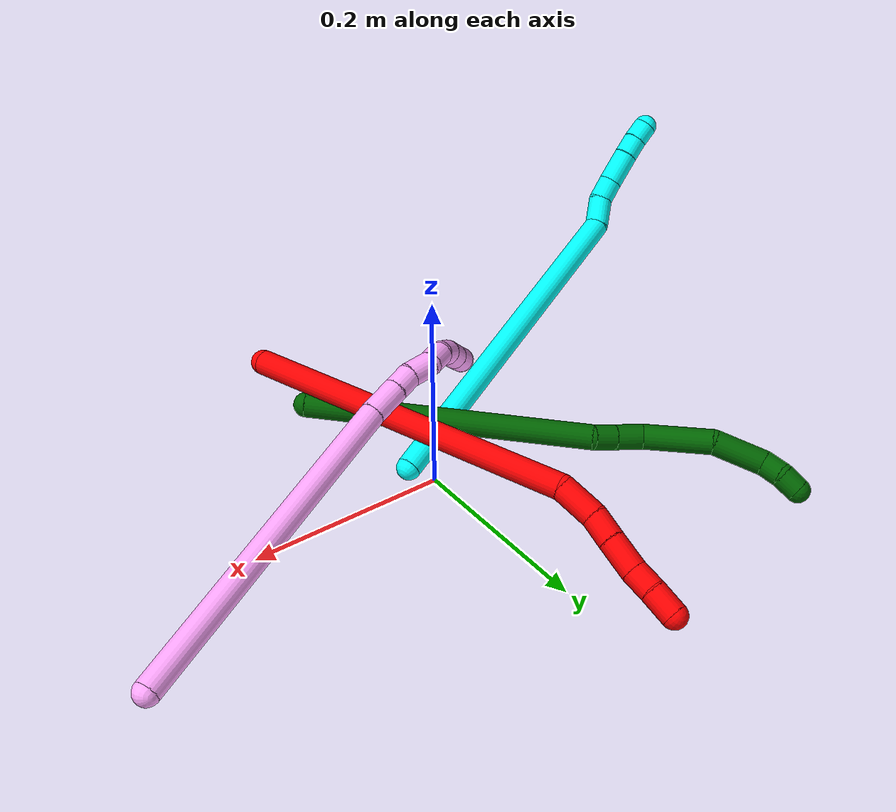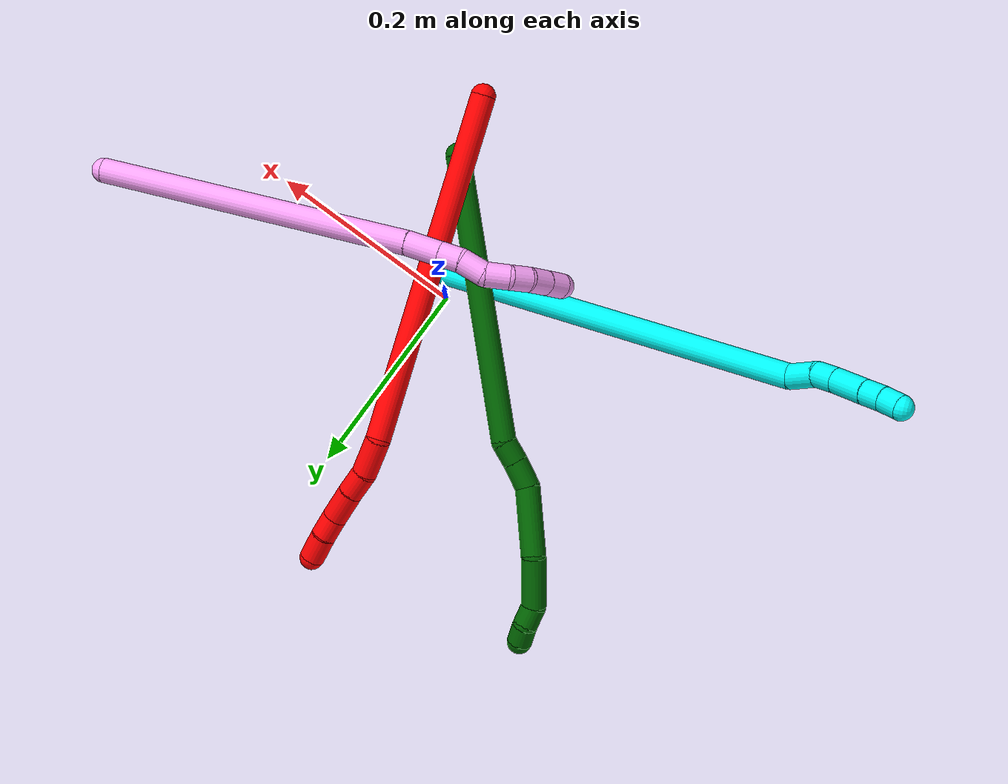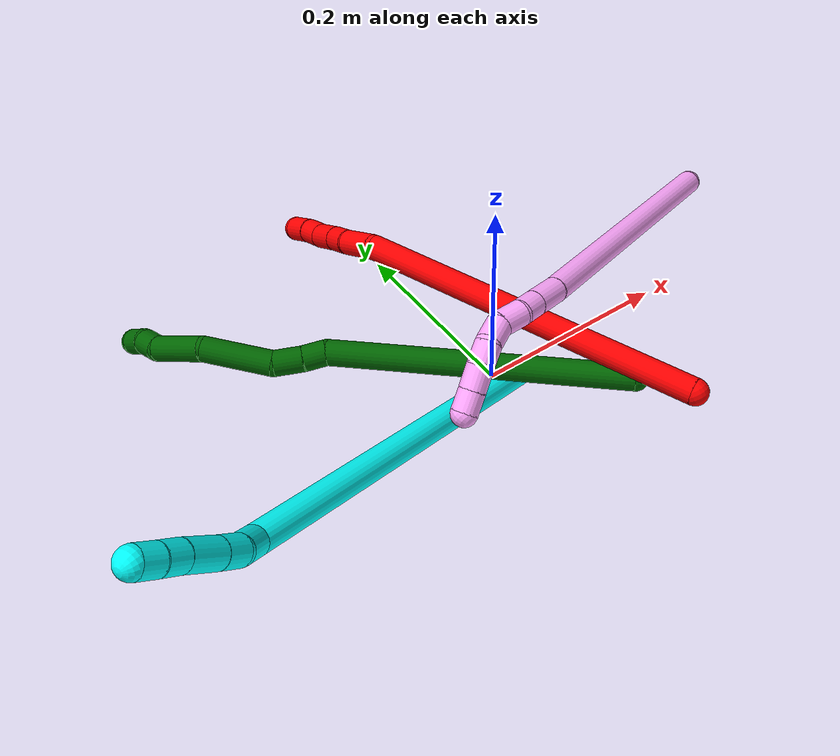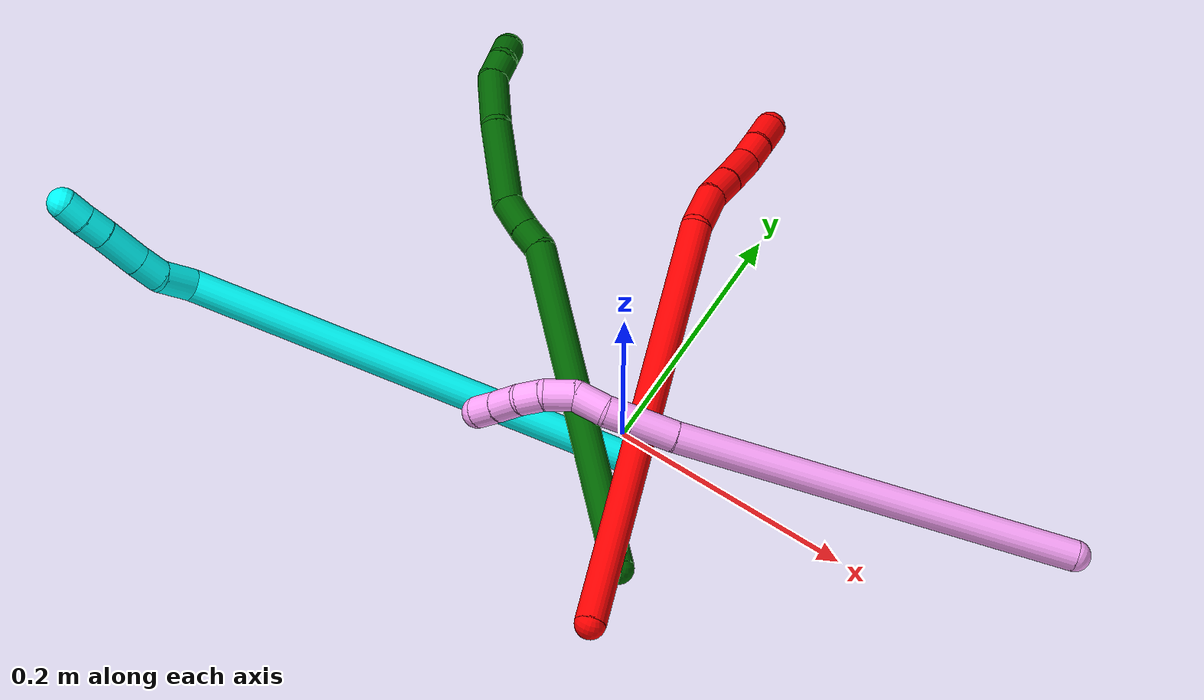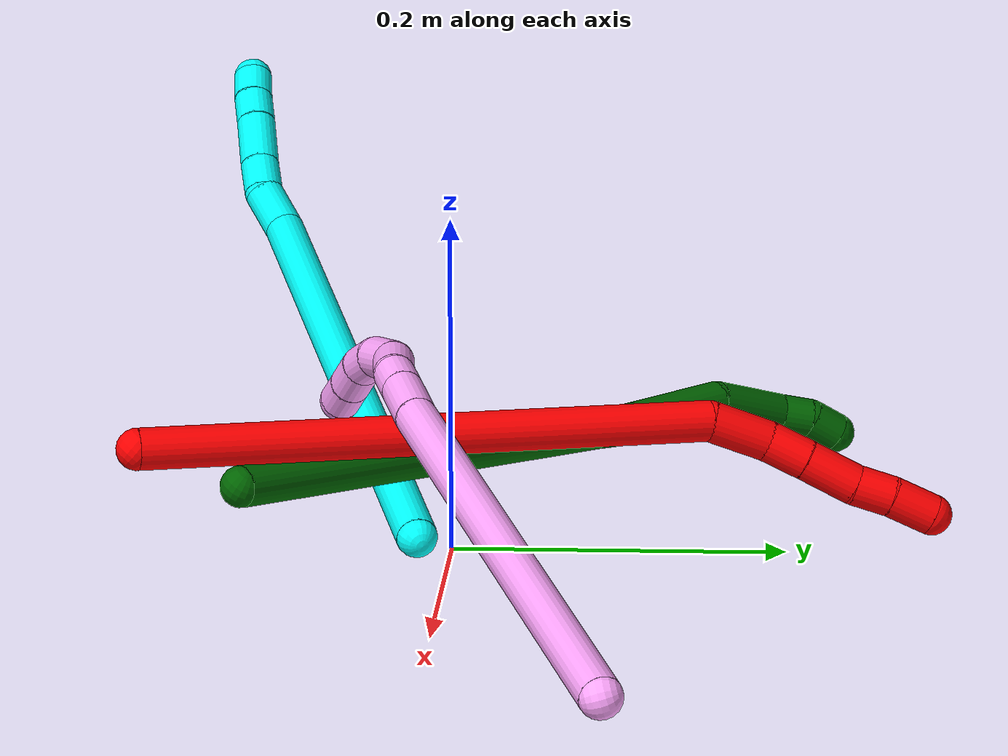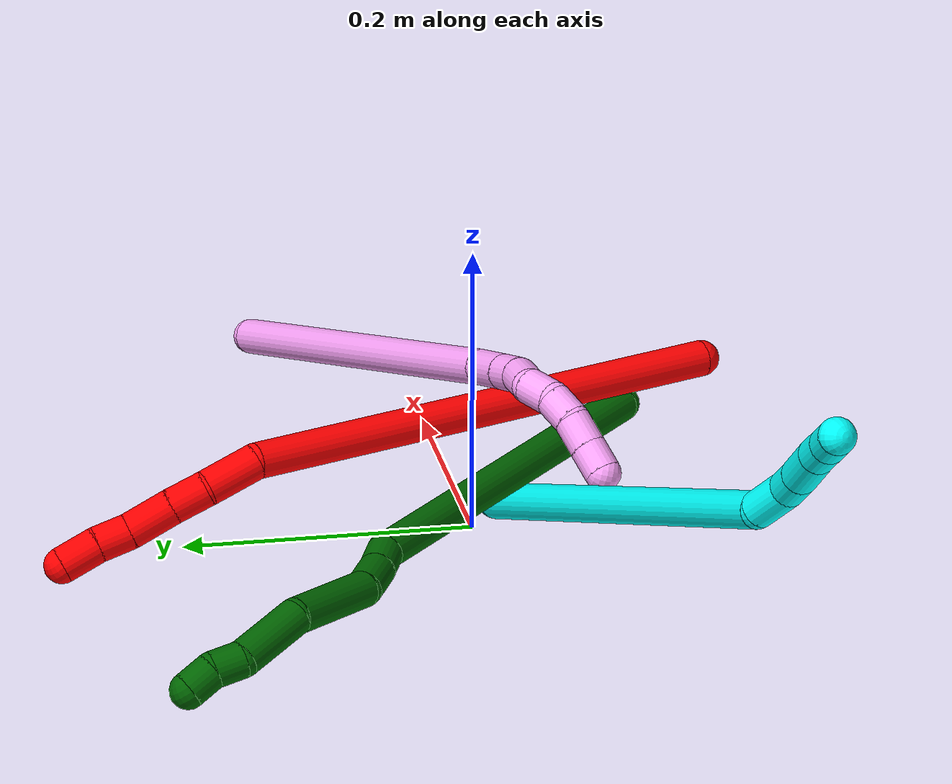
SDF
<sdf version="1.7">
 <world name="default">
  <model name="2">
   <static>0</static>
   <link name="2">
    <collision name="collision-cylinder-e_1_1_4">
     <pose>-0.042637 0.131078 0.108665 -0.878614 -0.245373 0.115762</pose>
     <geometry><cylinder><radius>0.0125</radius><length>0.351042</length></cylinder></geometry>
     <surface>
      <friction><ode><mu>1.16</mu><mu2>1.16</mu2><slip1>0</slip1><slip2>0</slip2></ode></friction>
      <contact><ode><kp>1e+06</kp><kd>1</kd><max_vel>0</max_vel><min_depth>0.001</min_depth></ode></contact>
     </surface>
    </collision>
    <visual name="visual-cylinder-e_1_1_4">
     <pose>-0.042637 0.131078 0.108665 -0.878614 -0.245373 0.115762</pose>
     <geometry><cylinder><radius>0.0125</radius><length>0.351042</length></cylinder></geometry>
     <material><ambient>1 0 0 1</ambient></material>
    </visual>
    <collision name="collision-cylinder-e_2_4_5">
     <pose>-0.087917 0.280091 0.223551 -1.23693 -0.138312 0.0985</pose>
     <geometry><cylinder><radius>0.0125</radius><length>0.038331</length></cylinder></geometry>
     <surface>
      <friction><ode><mu>1.16</mu><mu2>1.16</mu2><slip1>0</slip1><slip2>0</slip2></ode></friction>
      <contact><ode><kp>1e+06</kp><kd>1</kd><max_vel>0</max_vel><min_depth>0.001</min_depth></ode></contact>
     </surface>
    </collision>
    <visual name="visual-cylinder-e_2_4_5">
     <pose>-0.087917 0.280091 0.223551 -1.23693 -0.138312 0.0985</pose>
     <geometry><cylinder><radius>0.0125</radius><length>0.038331</length></cylinder></geometry>
     <material><ambient>1 0 0 1</ambient></material>
    </visual>
    <collision name="collision-cylinder-e_3_5_6">
     <pose>-0.089574 0.310755 0.232986 -1.32349 0.07487 -0.058327</pose>
     <geometry><cylinder><radius>0.0125</radius><length>0.026332</length></cylinder></geometry>
     <surface>
      <friction><ode><mu>1.16</mu><mu2>1.16</mu2><slip1>0</slip1><slip2>0</slip2></ode></friction>
      <contact><ode><kp>1e+06</kp><kd>1</kd><max_vel>0</max_vel><min_depth>0.001</min_depth></ode></contact>
     </surface>
    </collision>
    <visual name="visual-cylinder-e_3_5_6">
     <pose>-0.089574 0.310755 0.232986 -1.32349 0.07487 -0.058327</pose>
     <geometry><cylinder><radius>0.0125</radius><length>0.026332</length></cylinder></geometry>
     <material><ambient>1 0 0 1</ambient></material>
    </visual>
    <collision name="collision-cylinder-e_4_6_7">
     <pose>-0.08808 0.339709 0.239796 -1.35269 0.030663 -0.024612</pose>
     <geometry><cylinder><radius>0.0125</radius><length>0.033252</length></cylinder></geometry>
     <surface>
      <friction><ode><mu>1.16</mu><mu2>1.16</mu2><slip1>0</slip1><slip2>0</slip2></ode></friction>
      <contact><ode><kp>1e+06</kp><kd>1</kd><max_vel>0</max_vel><min_depth>0.001</min_depth></ode></contact>
     </surface>
    </collision>
    <visual name="visual-cylinder-e_4_6_7">
     <pose>-0.08808 0.339709 0.239796 -1.35269 0.030663 -0.024612</pose>
     <geometry><cylinder><radius>0.0125</radius><length>0.033252</length></cylinder></geometry>
     <material><ambient>1 0 0 1</ambient></material>
    </visual>
    <collision name="collision-cylinder-e_5_7_8">
     <pose>-0.087529 0.366818 0.247785 -1.18715 0.003515 -0.002372</pose>
     <geometry><cylinder><radius>0.0125</radius><length>0.023475</length></cylinder></geometry>
     <surface>
      <friction><ode><mu>1.16</mu><mu2>1.16</mu2><slip1>0</slip1><slip2>0</slip2></ode></friction>
      <contact><ode><kp>1e+06</kp><kd>1</kd><max_vel>0</max_vel><min_depth>0.001</min_depth></ode></contact>
     </surface>
    </collision>
    <visual name="visual-cylinder-e_5_7_8">
     <pose>-0.087529 0.366818 0.247785 -1.18715 0.003515 -0.002372</pose>
     <geometry><cylinder><radius>0.0125</radius><length>0.023475</length></cylinder></geometry>
     <material><ambient>1 0 0 1</ambient></material>
    </visual>
    <collision name="collision-cylinder-e_6_8_2">
     <pose>-0.088092 0.391014 0.255703 -1.31193 -0.043882 0.033776</pose>
     <geometry><cylinder><radius>0.0125</radius><length>0.027568</length></cylinder></geometry>
     <surface>
      <friction><ode><mu>1.16</mu><mu2>1.16</mu2><slip1>0</slip1><slip2>0</slip2></ode></friction>
      <contact><ode><kp>1e+06</kp><kd>1</kd><max_vel>0</max_vel><min_depth>0.001</min_depth></ode></contact>
     </surface>
    </collision>
    <visual name="visual-cylinder-e_6_8_2">
     <pose>-0.088092 0.391014 0.255703 -1.31193 -0.043882 0.033776</pose>
     <geometry><cylinder><radius>0.0125</radius><length>0.027568</length></cylinder></geometry>
     <material><ambient>1 0 0 1</ambient></material>
    </visual>
    <collision name="collision-sphere-2">
     <pose>-0.088697 0.404326 0.259228 0 -0 0</pose>
     <geometry><sphere><radius>0.0125</radius></sphere></geometry>
     <surface>
      <friction><ode><mu>1.16</mu><mu2>1.16</mu2><slip1>0</slip1><slip2>0</slip2></ode></friction>
      <contact><ode><kp>1e+06</kp><kd>1</kd><max_vel>0</max_vel><min_depth>0.001</min_depth></ode></contact>
     </surface>
    </collision>
    <visual name="visual-sphere-2">
     <pose>-0.088697 0.404326 0.259228 0 -0 0</pose>
     <geometry><sphere><radius>0.0125</radius></sphere></geometry>
     <material><ambient>1 0 0 1</ambient></material>
    </visual>
    <collision name="collision-sphere-4">
     <pose>-0.085275 0.262157 0.217331 0 -0 0</pose>
     <geometry><sphere><radius>0.0125</radius></sphere></geometry>
     <surface>
      <friction><ode><mu>1.16</mu><mu2>1.16</mu2><slip1>0</slip1><slip2>0</slip2></ode></friction>
      <contact><ode><kp>1e+06</kp><kd>1</kd><max_vel>0</max_vel><min_depth>0.001</min_depth></ode></contact>
     </surface>
    </collision>
    <visual name="visual-sphere-4">
     <pose>-0.085275 0.262157 0.217331 0 -0 0</pose>
     <geometry><sphere><radius>0.0125</radius></sphere></geometry>
     <material><ambient>1 0 0 1</ambient></material>
    </visual>
    <collision name="collision-sphere-1">
     <geometry><sphere><radius>0.0125</radius></sphere></geometry>
     <surface>
      <friction><ode><mu>1.16</mu><mu2>1.16</mu2><slip1>0</slip1><slip2>0</slip2></ode></friction>
      <contact><ode><kp>1e+06</kp><kd>1</kd><max_vel>0</max_vel><min_depth>0.001</min_depth></ode></contact>
     </surface>
    </collision>
    <visual name="visual-sphere-1">
     <geometry><sphere><radius>0.0125</radius></sphere></geometry>
     <material><ambient>1 0 0 1</ambient></material>
    </visual>
    <collision name="collision-sphere-8">
     <pose>-0.087488 0.377702 0.252178 0 -0 0</pose>
     <geometry><sphere><radius>0.0125</radius></sphere></geometry>
     <surface>
      <friction><ode><mu>1.16</mu><mu2>1.16</mu2><slip1>0</slip1><slip2>0</slip2></ode></friction>
      <contact><ode><kp>1e+06</kp><kd>1</kd><max_vel>0</max_vel><min_depth>0.001</min_depth></ode></contact>
     </surface>
    </collision>
    <visual name="visual-sphere-8">
     <pose>-0.087488 0.377702 0.252178 0 -0 0</pose>
     <geometry><sphere><radius>0.0125</radius></sphere></geometry>
     <material><ambient>1 0 0 1</ambient></material>
    </visual>
    <collision name="collision-sphere-5">
     <pose>-0.090559 0.298026 0.229772 0 -0 0</pose>
     <geometry><sphere><radius>0.0125</radius></sphere></geometry>
     <surface>
      <friction><ode><mu>1.16</mu><mu2>1.16</mu2><slip1>0</slip1><slip2>0</slip2></ode></friction>
      <contact><ode><kp>1e+06</kp><kd>1</kd><max_vel>0</max_vel><min_depth>0.001</min_depth></ode></contact>
     </surface>
    </collision>
    <visual name="visual-sphere-5">
     <pose>-0.090559 0.298026 0.229772 0 -0 0</pose>
     <geometry><sphere><radius>0.0125</radius></sphere></geometry>
     <material><ambient>1 0 0 1</ambient></material>
    </visual>
    <collision name="collision-sphere-6">
     <pose>-0.08859 0.323485 0.2362 0 -0 0</pose>
     <geometry><sphere><radius>0.0125</radius></sphere></geometry>
     <surface>
      <friction><ode><mu>1.16</mu><mu2>1.16</mu2><slip1>0</slip1><slip2>0</slip2></ode></friction>
      <contact><ode><kp>1e+06</kp><kd>1</kd><max_vel>0</max_vel><min_depth>0.001</min_depth></ode></contact>
     </surface>
    </collision>
    <visual name="visual-sphere-6">
     <pose>-0.08859 0.323485 0.2362 0 -0 0</pose>
     <geometry><sphere><radius>0.0125</radius></sphere></geometry>
     <material><ambient>1 0 0 1</ambient></material>
    </visual>
    <collision name="collision-sphere-7">
     <pose>-0.08757 0.355934 0.243392 0 -0 0</pose>
     <geometry><sphere><radius>0.0125</radius></sphere></geometry>
     <surface>
      <friction><ode><mu>1.16</mu><mu2>1.16</mu2><slip1>0</slip1><slip2>0</slip2></ode></friction>
      <contact><ode><kp>1e+06</kp><kd>1</kd><max_vel>0</max_vel><min_depth>0.001</min_depth></ode></contact>
     </surface>
    </collision>
    <visual name="visual-sphere-7">
     <pose>-0.08757 0.355934 0.243392 0 -0 0</pose>
     <geometry><sphere><radius>0.0125</radius></sphere></geometry>
     <material><ambient>1 0 0 1</ambient></material>
    </visual>
    <inertial>
     <pose>-0.056216 0.191239 0.147379 0 -0 0</pose>
     <mass>0.5</mass>
     <inertia>
      <ixx>0.003904</ixx>
      <ixy>0</ixy>
      <ixz>0</ixz>
      <iyy>0.002815</iyy>
      <iyz>0</iyz>
      <izz>-0.00182</izz>
     </inertia>
    </inertial>
   </link>
   <pose>0.085203 -0.177345 0.079597 -0.705389 -0.025949 0.093864</pose>
  </model>
  <model name="3">
   <static>0</static>
   <link name="3">
    <collision name="collision-cylinder-e_1_1_4">
     <pose>-0.013847 -0.007737 0.183865 0.042053 -0.075104 -0.00158</pose>
     <geometry><cylinder><radius>0.0125</radius><length>0.369095</length></cylinder></geometry>
     <surface>
      <friction><ode><mu>1.16</mu><mu2>1.16</mu2><slip1>0</slip1><slip2>0</slip2></ode></friction>
      <contact><ode><kp>1e+06</kp><kd>1</kd><max_vel>0</max_vel><min_depth>0.001</min_depth></ode></contact>
     </surface>
    </collision>
    <visual name="visual-cylinder-e_1_1_4">
     <pose>-0.013847 -0.007737 0.183865 0.042053 -0.075104 -0.00158</pose>
     <geometry><cylinder><radius>0.0125</radius><length>0.369095</length></cylinder></geometry>
     <material><ambient>0.003922 1 0.996078 1</ambient></material>
    </visual>
    <collision name="collision-cylinder-e_2_4_5">
     <pose>-0.03306 -0.009807 0.381199 -0.39818 -0.351883 0.071708</pose>
     <geometry><cylinder><radius>0.0125</radius><length>0.031133</length></cylinder></geometry>
     <surface>
      <friction><ode><mu>1.16</mu><mu2>1.16</mu2><slip1>0</slip1><slip2>0</slip2></ode></friction>
      <contact><ode><kp>1e+06</kp><kd>1</kd><max_vel>0</max_vel><min_depth>0.001</min_depth></ode></contact>
     </surface>
    </collision>
    <visual name="visual-cylinder-e_2_4_5">
     <pose>-0.03306 -0.009807 0.381199 -0.39818 -0.351883 0.071708</pose>
     <geometry><cylinder><radius>0.0125</radius><length>0.031133</length></cylinder></geometry>
     <material><ambient>0.003922 1 0.996078 1</ambient></material>
    </visual>
    <collision name="collision-cylinder-e_3_5_6">
     <pose>-0.043669 -0.003716 0.405083 -0.040859 -0.466083 0.009699</pose>
     <geometry><cylinder><radius>0.0125</radius><length>0.023337</length></cylinder></geometry>
     <surface>
      <friction><ode><mu>1.16</mu><mu2>1.16</mu2><slip1>0</slip1><slip2>0</slip2></ode></friction>
      <contact><ode><kp>1e+06</kp><kd>1</kd><max_vel>0</max_vel><min_depth>0.001</min_depth></ode></contact>
     </surface>
    </collision>
    <visual name="visual-cylinder-e_3_5_6">
     <pose>-0.043669 -0.003716 0.405083 -0.040859 -0.466083 0.009699</pose>
     <geometry><cylinder><radius>0.0125</radius><length>0.023337</length></cylinder></geometry>
     <material><ambient>0.003922 1 0.996078 1</ambient></material>
    </visual>
    <collision name="collision-cylinder-e_4_6_7">
     <pose>-0.057276 -0.003283 0.431039 -0.000457 -0.493732 0.000115</pose>
     <geometry><cylinder><radius>0.0125</radius><length>0.035296</length></cylinder></geometry>
     <surface>
      <friction><ode><mu>1.16</mu><mu2>1.16</mu2><slip1>0</slip1><slip2>0</slip2></ode></friction>
      <contact><ode><kp>1e+06</kp><kd>1</kd><max_vel>0</max_vel><min_depth>0.001</min_depth></ode></contact>
     </surface>
    </collision>
    <visual name="visual-cylinder-e_4_6_7">
     <pose>-0.057276 -0.003283 0.431039 -0.000457 -0.493732 0.000115</pose>
     <geometry><cylinder><radius>0.0125</radius><length>0.035296</length></cylinder></geometry>
     <material><ambient>0.003922 1 0.996078 1</ambient></material>
    </visual>
    <collision name="collision-cylinder-e_5_7_8">
     <pose>-0.070094 -0.003364 0.456113 0.009232 -0.437097 -0.00205</pose>
     <geometry><cylinder><radius>0.0125</radius><length>0.021045</length></cylinder></geometry>
     <surface>
      <friction><ode><mu>1.16</mu><mu2>1.16</mu2><slip1>0</slip1><slip2>0</slip2></ode></friction>
      <contact><ode><kp>1e+06</kp><kd>1</kd><max_vel>0</max_vel><min_depth>0.001</min_depth></ode></contact>
     </surface>
    </collision>
    <visual name="visual-cylinder-e_5_7_8">
     <pose>-0.070094 -0.003364 0.456113 0.009232 -0.437097 -0.00205</pose>
     <geometry><cylinder><radius>0.0125</radius><length>0.021045</length></cylinder></geometry>
     <material><ambient>0.003922 1 0.996078 1</ambient></material>
    </visual>
    <collision name="collision-cylinder-e_6_8_2">
     <pose>-0.078761 -0.004381 0.474719 0.102077 -0.432643 -0.022451</pose>
     <geometry><cylinder><radius>0.0125</radius><length>0.020093</length></cylinder></geometry>
     <surface>
      <friction><ode><mu>1.16</mu><mu2>1.16</mu2><slip1>0</slip1><slip2>0</slip2></ode></friction>
      <contact><ode><kp>1e+06</kp><kd>1</kd><max_vel>0</max_vel><min_depth>0.001</min_depth></ode></contact>
     </surface>
    </collision>
    <visual name="visual-cylinder-e_6_8_2">
     <pose>-0.078761 -0.004381 0.474719 0.102077 -0.432643 -0.022451</pose>
     <geometry><cylinder><radius>0.0125</radius><length>0.020093</length></cylinder></geometry>
     <material><ambient>0.003922 1 0.996078 1</ambient></material>
    </visual>
    <collision name="collision-sphere-2">
     <pose>-0.082973 -0.00531 0.483792 0 -0 0</pose>
     <geometry><sphere><radius>0.0125</radius></sphere></geometry>
     <surface>
      <friction><ode><mu>1.16</mu><mu2>1.16</mu2><slip1>0</slip1><slip2>0</slip2></ode></friction>
      <contact><ode><kp>1e+06</kp><kd>1</kd><max_vel>0</max_vel><min_depth>0.001</min_depth></ode></contact>
     </surface>
    </collision>
    <visual name="visual-sphere-2">
     <pose>-0.082973 -0.00531 0.483792 0 -0 0</pose>
     <geometry><sphere><radius>0.0125</radius></sphere></geometry>
     <material><ambient>0.003922 1 0.996078 1</ambient></material>
    </visual>
    <collision name="collision-sphere-4">
     <pose>-0.027695 -0.015473 0.367729 0 -0 0</pose>
     <geometry><sphere><radius>0.0125</radius></sphere></geometry>
     <surface>
      <friction><ode><mu>1.16</mu><mu2>1.16</mu2><slip1>0</slip1><slip2>0</slip2></ode></friction>
      <contact><ode><kp>1e+06</kp><kd>1</kd><max_vel>0</max_vel><min_depth>0.001</min_depth></ode></contact>
     </surface>
    </collision>
    <visual name="visual-sphere-4">
     <pose>-0.027695 -0.015473 0.367729 0 -0 0</pose>
     <geometry><sphere><radius>0.0125</radius></sphere></geometry>
     <material><ambient>0.003922 1 0.996078 1</ambient></material>
    </visual>
    <collision name="collision-sphere-1">
     <geometry><sphere><radius>0.0125</radius></sphere></geometry>
     <surface>
      <friction><ode><mu>1.16</mu><mu2>1.16</mu2><slip1>0</slip1><slip2>0</slip2></ode></friction>
      <contact><ode><kp>1e+06</kp><kd>1</kd><max_vel>0</max_vel><min_depth>0.001</min_depth></ode></contact>
     </surface>
    </collision>
    <visual name="visual-sphere-1">
     <geometry><sphere><radius>0.0125</radius></sphere></geometry>
     <material><ambient>0.003922 1 0.996078 1</ambient></material>
    </visual>
    <collision name="collision-sphere-8">
     <pose>-0.074549 -0.003452 0.465646 0 -0 0</pose>
     <geometry><sphere><radius>0.0125</radius></sphere></geometry>
     <surface>
      <friction><ode><mu>1.16</mu><mu2>1.16</mu2><slip1>0</slip1><slip2>0</slip2></ode></friction>
      <contact><ode><kp>1e+06</kp><kd>1</kd><max_vel>0</max_vel><min_depth>0.001</min_depth></ode></contact>
     </surface>
    </collision>
    <visual name="visual-sphere-8">
     <pose>-0.074549 -0.003452 0.465646 0 -0 0</pose>
     <geometry><sphere><radius>0.0125</radius></sphere></geometry>
     <material><ambient>0.003922 1 0.996078 1</ambient></material>
    </visual>
    <collision name="collision-sphere-5">
     <pose>-0.038425 -0.004141 0.394668 0 -0 0</pose>
     <geometry><sphere><radius>0.0125</radius></sphere></geometry>
     <surface>
      <friction><ode><mu>1.16</mu><mu2>1.16</mu2><slip1>0</slip1><slip2>0</slip2></ode></friction>
      <contact><ode><kp>1e+06</kp><kd>1</kd><max_vel>0</max_vel><min_depth>0.001</min_depth></ode></contact>
     </surface>
    </collision>
    <visual name="visual-sphere-5">
     <pose>-0.038425 -0.004141 0.394668 0 -0 0</pose>
     <geometry><sphere><radius>0.0125</radius></sphere></geometry>
     <material><ambient>0.003922 1 0.996078 1</ambient></material>
    </visual>
    <collision name="collision-sphere-6">
     <pose>-0.048912 -0.00329 0.415499 0 -0 0</pose>
     <geometry><sphere><radius>0.0125</radius></sphere></geometry>
     <surface>
      <friction><ode><mu>1.16</mu><mu2>1.16</mu2><slip1>0</slip1><slip2>0</slip2></ode></friction>
      <contact><ode><kp>1e+06</kp><kd>1</kd><max_vel>0</max_vel><min_depth>0.001</min_depth></ode></contact>
     </surface>
    </collision>
    <visual name="visual-sphere-6">
     <pose>-0.048912 -0.00329 0.415499 0 -0 0</pose>
     <geometry><sphere><radius>0.0125</radius></sphere></geometry>
     <material><ambient>0.003922 1 0.996078 1</ambient></material>
    </visual>
    <collision name="collision-sphere-7">
     <pose>-0.06564 -0.003276 0.44658 0 -0 0</pose>
     <geometry><sphere><radius>0.0125</radius></sphere></geometry>
     <surface>
      <friction><ode><mu>1.16</mu><mu2>1.16</mu2><slip1>0</slip1><slip2>0</slip2></ode></friction>
      <contact><ode><kp>1e+06</kp><kd>1</kd><max_vel>0</max_vel><min_depth>0.001</min_depth></ode></contact>
     </surface>
    </collision>
    <visual name="visual-sphere-7">
     <pose>-0.06564 -0.003276 0.44658 0 -0 0</pose>
     <geometry><sphere><radius>0.0125</radius></sphere></geometry>
     <material><ambient>0.003922 1 0.996078 1</ambient></material>
    </visual>
    <inertial>
     <pose>-0.024477 -0.007045 0.247073 0 -0 0</pose>
     <mass>0.5</mass>
     <inertia>
      <ixx>0.004192</ixx>
      <ixy>0</ixy>
      <ixz>0</ixz>
      <iyy>0.004208</iyy>
      <iyz>0</iyz>
      <izz>0.000534</izz>
     </inertia>
    </inertial>
   </link>
   <pose>0.017108 -0.01964 0.011488 0.826712 1.15023 -1.88537</pose>
  </model>
  <model name="4">
   <static>0</static>
   <link name="4">
    <collision name="collision-cylinder-e_1_1_4">
     <pose>-0.156016 -0.025528 -0.043532 2.61122 -1.25796 -2.42706</pose>
     <geometry><cylinder><radius>0.0125</radius><length>0.32795</length></cylinder></geometry>
     <surface>
      <friction><ode><mu>1.16</mu><mu2>1.16</mu2><slip1>0</slip1><slip2>0</slip2></ode></friction>
      <contact><ode><kp>1e+06</kp><kd>1</kd><max_vel>0</max_vel><min_depth>0.001</min_depth></ode></contact>
     </surface>
    </collision>
    <visual name="visual-cylinder-e_1_1_4">
     <pose>-0.156016 -0.025528 -0.043532 2.61122 -1.25796 -2.42706</pose>
     <geometry><cylinder><radius>0.0125</radius><length>0.32795</length></cylinder></geometry>
     <material><ambient>1 0.65098 0.996078 1</ambient></material>
    </visual>
    <collision name="collision-cylinder-e_2_4_5">
     <pose>-0.329289 -0.053205 -0.090566 2.59124 -1.33706 -2.45499</pose>
     <geometry><cylinder><radius>0.0125</radius><length>0.035478</length></cylinder></geometry>
     <surface>
      <friction><ode><mu>1.16</mu><mu2>1.16</mu2><slip1>0</slip1><slip2>0</slip2></ode></friction>
      <contact><ode><kp>1e+06</kp><kd>1</kd><max_vel>0</max_vel><min_depth>0.001</min_depth></ode></contact>
     </surface>
    </collision>
    <visual name="visual-cylinder-e_2_4_5">
     <pose>-0.329289 -0.053205 -0.090566 2.59124 -1.33706 -2.45499</pose>
     <geometry><cylinder><radius>0.0125</radius><length>0.035478</length></cylinder></geometry>
     <material><ambient>1 0.65098 0.996078 1</ambient></material>
    </visual>
    <collision name="collision-cylinder-e_3_5_6">
     <pose>-0.357279 -0.056611 -0.096363 2.64033 -1.3317 -2.51147</pose>
     <geometry><cylinder><radius>0.0125</radius><length>0.022096</length></cylinder></geometry>
     <surface>
      <friction><ode><mu>1.16</mu><mu2>1.16</mu2><slip1>0</slip1><slip2>0</slip2></ode></friction>
      <contact><ode><kp>1e+06</kp><kd>1</kd><max_vel>0</max_vel><min_depth>0.001</min_depth></ode></contact>
     </surface>
    </collision>
    <visual name="visual-cylinder-e_3_5_6">
     <pose>-0.357279 -0.056611 -0.096363 2.64033 -1.3317 -2.51147</pose>
     <geometry><cylinder><radius>0.0125</radius><length>0.022096</length></cylinder></geometry>
     <material><ambient>1 0.65098 0.996078 1</ambient></material>
    </visual>
    <collision name="collision-cylinder-e_4_6_7">
     <pose>-0.380846 -0.05659 -0.099397 -2.09516 -1.45624 1.99305</pose>
     <geometry><cylinder><radius>0.0125</radius><length>0.025835</length></cylinder></geometry>
     <surface>
      <friction><ode><mu>1.16</mu><mu2>1.16</mu2><slip1>0</slip1><slip2>0</slip2></ode></friction>
      <contact><ode><kp>1e+06</kp><kd>1</kd><max_vel>0</max_vel><min_depth>0.001</min_depth></ode></contact>
     </surface>
    </collision>
    <visual name="visual-cylinder-e_4_6_7">
     <pose>-0.380846 -0.05659 -0.099397 -2.09516 -1.45624 1.99305</pose>
     <geometry><cylinder><radius>0.0125</radius><length>0.025835</length></cylinder></geometry>
     <material><ambient>1 0.65098 0.996078 1</ambient></material>
    </visual>
    <collision name="collision-cylinder-e_5_7_8">
     <pose>-0.404219 -0.053901 -0.106135 -2.91048 -1.0417 2.74233</pose>
     <geometry><cylinder><radius>0.0125</radius><length>0.024419</length></cylinder></geometry>
     <surface>
      <friction><ode><mu>1.16</mu><mu2>1.16</mu2><slip1>0</slip1><slip2>0</slip2></ode></friction>
      <contact><ode><kp>1e+06</kp><kd>1</kd><max_vel>0</max_vel><min_depth>0.001</min_depth></ode></contact>
     </surface>
    </collision>
    <visual name="visual-cylinder-e_5_7_8">
     <pose>-0.404219 -0.053901 -0.106135 -2.91048 -1.0417 2.74233</pose>
     <geometry><cylinder><radius>0.0125</radius><length>0.024419</length></cylinder></geometry>
     <material><ambient>1 0.65098 0.996078 1</ambient></material>
    </visual>
    <collision name="collision-cylinder-e_6_8_9">
     <pose>-0.421946 -0.047833 -0.118169 -2.48448 -0.756055 1.72283</pose>
     <geometry><cylinder><radius>0.0125</radius><length>0.020952</length></cylinder></geometry>
     <surface>
      <friction><ode><mu>1.16</mu><mu2>1.16</mu2><slip1>0</slip1><slip2>0</slip2></ode></friction>
      <contact><ode><kp>1e+06</kp><kd>1</kd><max_vel>0</max_vel><min_depth>0.001</min_depth></ode></contact>
     </surface>
    </collision>
    <visual name="visual-cylinder-e_6_8_9">
     <pose>-0.421946 -0.047833 -0.118169 -2.48448 -0.756055 1.72283</pose>
     <geometry><cylinder><radius>0.0125</radius><length>0.020952</length></cylinder></geometry>
     <material><ambient>1 0.65098 0.996078 1</ambient></material>
    </visual>
    <collision name="collision-cylinder-e_7_9_10">
     <pose>-0.435264 -0.035849 -0.130286 -2.26358 -0.571883 1.11879</pose>
     <geometry><cylinder><radius>0.0125</radius><length>0.022654</length></cylinder></geometry>
     <surface>
      <friction><ode><mu>1.16</mu><mu2>1.16</mu2><slip1>0</slip1><slip2>0</slip2></ode></friction>
      <contact><ode><kp>1e+06</kp><kd>1</kd><max_vel>0</max_vel><min_depth>0.001</min_depth></ode></contact>
     </surface>
    </collision>
    <visual name="visual-cylinder-e_7_9_10">
     <pose>-0.435264 -0.035849 -0.130286 -2.26358 -0.571883 1.11879</pose>
     <geometry><cylinder><radius>0.0125</radius><length>0.022654</length></cylinder></geometry>
     <material><ambient>1 0.65098 0.996078 1</ambient></material>
    </visual>
    <collision name="collision-cylinder-e_8_10_2">
     <pose>-0.44724 -0.021971 -0.141773 -2.26073 -0.603026 1.16655</pose>
     <geometry><cylinder><radius>0.0125</radius><length>0.020616</length></cylinder></geometry>
     <surface>
      <friction><ode><mu>1.16</mu><mu2>1.16</mu2><slip1>0</slip1><slip2>0</slip2></ode></friction>
      <contact><ode><kp>1e+06</kp><kd>1</kd><max_vel>0</max_vel><min_depth>0.001</min_depth></ode></contact>
     </surface>
    </collision>
    <visual name="visual-cylinder-e_8_10_2">
     <pose>-0.44724 -0.021971 -0.141773 -2.26073 -0.603026 1.16655</pose>
     <geometry><cylinder><radius>0.0125</radius><length>0.020616</length></cylinder></geometry>
     <material><ambient>1 0.65098 0.996078 1</ambient></material>
    </visual>
    <collision name="collision-sphere-2">
     <pose>-0.453086 -0.015423 -0.147177 0 -0 0</pose>
     <geometry><sphere><radius>0.0125</radius></sphere></geometry>
     <surface>
      <friction><ode><mu>1.16</mu><mu2>1.16</mu2><slip1>0</slip1><slip2>0</slip2></ode></friction>
      <contact><ode><kp>1e+06</kp><kd>1</kd><max_vel>0</max_vel><min_depth>0.001</min_depth></ode></contact>
     </surface>
    </collision>
    <visual name="visual-sphere-2">
     <pose>-0.453086 -0.015423 -0.147177 0 -0 0</pose>
     <geometry><sphere><radius>0.0125</radius></sphere></geometry>
     <material><ambient>1 0.65098 0.996078 1</ambient></material>
    </visual>
    <collision name="collision-sphere-10">
     <pose>-0.441394 -0.028519 -0.13637 0 -0 0</pose>
     <geometry><sphere><radius>0.0125</radius></sphere></geometry>
     <surface>
      <friction><ode><mu>1.16</mu><mu2>1.16</mu2><slip1>0</slip1><slip2>0</slip2></ode></friction>
      <contact><ode><kp>1e+06</kp><kd>1</kd><max_vel>0</max_vel><min_depth>0.001</min_depth></ode></contact>
     </surface>
    </collision>
    <visual name="visual-sphere-10">
     <pose>-0.441394 -0.028519 -0.13637 0 -0 0</pose>
     <geometry><sphere><radius>0.0125</radius></sphere></geometry>
     <material><ambient>1 0.65098 0.996078 1</ambient></material>
    </visual>
    <collision name="collision-sphere-9">
     <pose>-0.429133 -0.043178 -0.124203 0 -0 0</pose>
     <geometry><sphere><radius>0.0125</radius></sphere></geometry>
     <surface>
      <friction><ode><mu>1.16</mu><mu2>1.16</mu2><slip1>0</slip1><slip2>0</slip2></ode></friction>
      <contact><ode><kp>1e+06</kp><kd>1</kd><max_vel>0</max_vel><min_depth>0.001</min_depth></ode></contact>
     </surface>
    </collision>
    <visual name="visual-sphere-9">
     <pose>-0.429133 -0.043178 -0.124203 0 -0 0</pose>
     <geometry><sphere><radius>0.0125</radius></sphere></geometry>
     <material><ambient>1 0.65098 0.996078 1</ambient></material>
    </visual>
    <collision name="collision-sphere-4">
     <pose>-0.312033 -0.051056 -0.087064 0 -0 0</pose>
     <geometry><sphere><radius>0.0125</radius></sphere></geometry>
     <surface>
      <friction><ode><mu>1.16</mu><mu2>1.16</mu2><slip1>0</slip1><slip2>0</slip2></ode></friction>
      <contact><ode><kp>1e+06</kp><kd>1</kd><max_vel>0</max_vel><min_depth>0.001</min_depth></ode></contact>
     </surface>
    </collision>
    <visual name="visual-sphere-4">
     <pose>-0.312033 -0.051056 -0.087064 0 -0 0</pose>
     <geometry><sphere><radius>0.0125</radius></sphere></geometry>
     <material><ambient>1 0.65098 0.996078 1</ambient></material>
    </visual>
    <collision name="collision-sphere-1">
     <geometry><sphere><radius>0.0125</radius></sphere></geometry>
     <surface>
      <friction><ode><mu>1.16</mu><mu2>1.16</mu2><slip1>0</slip1><slip2>0</slip2></ode></friction>
      <contact><ode><kp>1e+06</kp><kd>1</kd><max_vel>0</max_vel><min_depth>0.001</min_depth></ode></contact>
     </surface>
    </collision>
    <visual name="visual-sphere-1">
     <geometry><sphere><radius>0.0125</radius></sphere></geometry>
     <material><ambient>1 0.65098 0.996078 1</ambient></material>
    </visual>
    <collision name="collision-sphere-8">
     <pose>-0.414759 -0.052489 -0.112134 0 -0 0</pose>
     <geometry><sphere><radius>0.0125</radius></sphere></geometry>
     <surface>
      <friction><ode><mu>1.16</mu><mu2>1.16</mu2><slip1>0</slip1><slip2>0</slip2></ode></friction>
      <contact><ode><kp>1e+06</kp><kd>1</kd><max_vel>0</max_vel><min_depth>0.001</min_depth></ode></contact>
     </surface>
    </collision>
    <visual name="visual-sphere-8">
     <pose>-0.414759 -0.052489 -0.112134 0 -0 0</pose>
     <geometry><sphere><radius>0.0125</radius></sphere></geometry>
     <material><ambient>1 0.65098 0.996078 1</ambient></material>
    </visual>
    <collision name="collision-sphere-5">
     <pose>-0.346546 -0.055354 -0.094068 0 -0 0</pose>
     <geometry><sphere><radius>0.0125</radius></sphere></geometry>
     <surface>
      <friction><ode><mu>1.16</mu><mu2>1.16</mu2><slip1>0</slip1><slip2>0</slip2></ode></friction>
      <contact><ode><kp>1e+06</kp><kd>1</kd><max_vel>0</max_vel><min_depth>0.001</min_depth></ode></contact>
     </surface>
    </collision>
    <visual name="visual-sphere-5">
     <pose>-0.346546 -0.055354 -0.094068 0 -0 0</pose>
     <geometry><sphere><radius>0.0125</radius></sphere></geometry>
     <material><ambient>1 0.65098 0.996078 1</ambient></material>
    </visual>
    <collision name="collision-sphere-6">
     <pose>-0.368013 -0.057868 -0.098657 0 -0 0</pose>
     <geometry><sphere><radius>0.0125</radius></sphere></geometry>
     <surface>
      <friction><ode><mu>1.16</mu><mu2>1.16</mu2><slip1>0</slip1><slip2>0</slip2></ode></friction>
      <contact><ode><kp>1e+06</kp><kd>1</kd><max_vel>0</max_vel><min_depth>0.001</min_depth></ode></contact>
     </surface>
    </collision>
    <visual name="visual-sphere-6">
     <pose>-0.368013 -0.057868 -0.098657 0 -0 0</pose>
     <geometry><sphere><radius>0.0125</radius></sphere></geometry>
     <material><ambient>1 0.65098 0.996078 1</ambient></material>
    </visual>
    <collision name="collision-sphere-7">
     <pose>-0.393679 -0.055312 -0.100136 0 -0 0</pose>
     <geometry><sphere><radius>0.0125</radius></sphere></geometry>
     <surface>
      <friction><ode><mu>1.16</mu><mu2>1.16</mu2><slip1>0</slip1><slip2>0</slip2></ode></friction>
      <contact><ode><kp>1e+06</kp><kd>1</kd><max_vel>0</max_vel><min_depth>0.001</min_depth></ode></contact>
     </surface>
    </collision>
    <visual name="visual-sphere-7">
     <pose>-0.393679 -0.055312 -0.100136 0 -0 0</pose>
     <geometry><sphere><radius>0.0125</radius></sphere></geometry>
     <material><ambient>1 0.65098 0.996078 1</ambient></material>
    </visual>
    <inertial>
     <pose>-0.236747 -0.033112 -0.066257 0 -0 0</pose>
     <mass>0.5</mass>
     <inertia>
      <ixx>-0.001315</ixx>
      <ixy>0</ixy>
      <ixz>0</ixz>
      <iyy>0.002274</iyy>
      <iyz>0</iyz>
      <izz>0.003268</izz>
     </inertia>
    </inertial>
   </link>
   <pose>0.353137 0.100624 0.011497 -1.27698 0.191898 0.064569</pose>
  </model>
  <model name="6">
   <static>0</static>
   <link name="6">
    <collision name="collision-cylinder-e_1_1_4">
     <pose>-0.128687 0.059871 -0.019288 -1.88246 -1.11615 1.41707</pose>
     <geometry><cylinder><radius>0.0125</radius><length>0.286474</length></cylinder></geometry>
     <surface>
      <friction><ode><mu>1.16</mu><mu2>1.16</mu2><slip1>0</slip1><slip2>0</slip2></ode></friction>
      <contact><ode><kp>1e+06</kp><kd>1</kd><max_vel>0</max_vel><min_depth>0.001</min_depth></ode></contact>
     </surface>
    </collision>
    <visual name="visual-cylinder-e_1_1_4">
     <pose>-0.128687 0.059871 -0.019288 -1.88246 -1.11615 1.41707</pose>
     <geometry><cylinder><radius>0.0125</radius><length>0.286474</length></cylinder></geometry>
     <material><ambient>0 0.392157 0.003922 1</ambient></material>
    </visual>
    <collision name="collision-cylinder-e_2_4_5">
     <pose>-0.266093 0.126763 -0.036714 -1.31148 -0.876248 0.69184</pose>
     <geometry><cylinder><radius>0.0125</radius><length>0.022697</length></cylinder></geometry>
     <surface>
      <friction><ode><mu>1.16</mu><mu2>1.16</mu2><slip1>0</slip1><slip2>0</slip2></ode></friction>
      <contact><ode><kp>1e+06</kp><kd>1</kd><max_vel>0</max_vel><min_depth>0.001</min_depth></ode></contact>
     </surface>
    </collision>
    <visual name="visual-cylinder-e_2_4_5">
     <pose>-0.266093 0.126763 -0.036714 -1.31148 -0.876248 0.69184</pose>
     <geometry><cylinder><radius>0.0125</radius><length>0.022697</length></cylinder></geometry>
     <material><ambient>0 0.392157 0.003922 1</ambient></material>
    </visual>
    <collision name="collision-cylinder-e_3_5_6">
     <pose>-0.285899 0.142455 -0.034017 -1.47489 -0.904787 0.831524</pose>
     <geometry><cylinder><radius>0.0125</radius><length>0.028201</length></cylinder></geometry>
     <surface>
      <friction><ode><mu>1.16</mu><mu2>1.16</mu2><slip1>0</slip1><slip2>0</slip2></ode></friction>
      <contact><ode><kp>1e+06</kp><kd>1</kd><max_vel>0</max_vel><min_depth>0.001</min_depth></ode></contact>
     </surface>
    </collision>
    <visual name="visual-cylinder-e_3_5_6">
     <pose>-0.285899 0.142455 -0.034017 -1.47489 -0.904787 0.831524</pose>
     <geometry><cylinder><radius>0.0125</radius><length>0.028201</length></cylinder></geometry>
     <material><ambient>0 0.392157 0.003922 1</ambient></material>
    </visual>
    <collision name="collision-cylinder-e_4_6_7">
     <pose>-0.327596 0.164879 -0.042001 -2.14095 -1.08056 1.66334</pose>
     <geometry><cylinder><radius>0.0125</radius><length>0.069391</length></cylinder></geometry>
     <surface>
      <friction><ode><mu>1.16</mu><mu2>1.16</mu2><slip1>0</slip1><slip2>0</slip2></ode></friction>
      <contact><ode><kp>1e+06</kp><kd>1</kd><max_vel>0</max_vel><min_depth>0.001</min_depth></ode></contact>
     </surface>
    </collision>
    <visual name="visual-cylinder-e_4_6_7">
     <pose>-0.327596 0.164879 -0.042001 -2.14095 -1.08056 1.66334</pose>
     <geometry><cylinder><radius>0.0125</radius><length>0.069391</length></cylinder></geometry>
     <material><ambient>0 0.392157 0.003922 1</ambient></material>
    </visual>
    <collision name="collision-cylinder-e_5_7_8">
     <pose>-0.383561 0.183292 -0.050773 -1.56115 -1.38901 1.37953</pose>
     <geometry><cylinder><radius>0.0125</radius><length>0.051561</length></cylinder></geometry>
     <surface>
      <friction><ode><mu>1.16</mu><mu2>1.16</mu2><slip1>0</slip1><slip2>0</slip2></ode></friction>
      <contact><ode><kp>1e+06</kp><kd>1</kd><max_vel>0</max_vel><min_depth>0.001</min_depth></ode></contact>
     </surface>
    </collision>
    <visual name="visual-cylinder-e_5_7_8">
     <pose>-0.383561 0.183292 -0.050773 -1.56115 -1.38901 1.37953</pose>
     <geometry><cylinder><radius>0.0125</radius><length>0.051561</length></cylinder></geometry>
     <material><ambient>0 0.392157 0.003922 1</ambient></material>
    </visual>
    <collision name="collision-cylinder-e_6_8_9">
     <pose>-0.419017 0.186256 -0.05336 2.56886 -1.27019 -2.38133</pose>
     <geometry><cylinder><radius>0.0125</radius><length>0.021149</length></cylinder></geometry>
     <surface>
      <friction><ode><mu>1.16</mu><mu2>1.16</mu2><slip1>0</slip1><slip2>0</slip2></ode></friction>
      <contact><ode><kp>1e+06</kp><kd>1</kd><max_vel>0</max_vel><min_depth>0.001</min_depth></ode></contact>
     </surface>
    </collision>
    <visual name="visual-cylinder-e_6_8_9">
     <pose>-0.419017 0.186256 -0.05336 2.56886 -1.27019 -2.38133</pose>
     <geometry><cylinder><radius>0.0125</radius><length>0.021149</length></cylinder></geometry>
     <material><ambient>0 0.392157 0.003922 1</ambient></material>
    </visual>
    <collision name="collision-cylinder-e_7_9_2">
     <pose>-0.439143 0.182613 -0.05498 1.09154 -1.35543 -0.909305</pose>
     <geometry><cylinder><radius>0.0125</radius><length>0.020527</length></cylinder></geometry>
     <surface>
      <friction><ode><mu>1.16</mu><mu2>1.16</mu2><slip1>0</slip1><slip2>0</slip2></ode></friction>
      <contact><ode><kp>1e+06</kp><kd>1</kd><max_vel>0</max_vel><min_depth>0.001</min_depth></ode></contact>
     </surface>
    </collision>
    <visual name="visual-cylinder-e_7_9_2">
     <pose>-0.439143 0.182613 -0.05498 1.09154 -1.35543 -0.909305</pose>
     <geometry><cylinder><radius>0.0125</radius><length>0.020527</length></cylinder></geometry>
     <material><ambient>0 0.392157 0.003922 1</ambient></material>
    </visual>
    <collision name="collision-sphere-2">
     <pose>-0.44917 0.180666 -0.053968 0 -0 0</pose>
     <geometry><sphere><radius>0.0125</radius></sphere></geometry>
     <surface>
      <friction><ode><mu>1.16</mu><mu2>1.16</mu2><slip1>0</slip1><slip2>0</slip2></ode></friction>
      <contact><ode><kp>1e+06</kp><kd>1</kd><max_vel>0</max_vel><min_depth>0.001</min_depth></ode></contact>
     </surface>
    </collision>
    <visual name="visual-sphere-2">
     <pose>-0.44917 0.180666 -0.053968 0 -0 0</pose>
     <geometry><sphere><radius>0.0125</radius></sphere></geometry>
     <material><ambient>0 0.392157 0.003922 1</ambient></material>
    </visual>
    <collision name="collision-sphere-9">
     <pose>-0.429117 0.184559 -0.055991 0 -0 0</pose>
     <geometry><sphere><radius>0.0125</radius></sphere></geometry>
     <surface>
      <friction><ode><mu>1.16</mu><mu2>1.16</mu2><slip1>0</slip1><slip2>0</slip2></ode></friction>
      <contact><ode><kp>1e+06</kp><kd>1</kd><max_vel>0</max_vel><min_depth>0.001</min_depth></ode></contact>
     </surface>
    </collision>
    <visual name="visual-sphere-9">
     <pose>-0.429117 0.184559 -0.055991 0 -0 0</pose>
     <geometry><sphere><radius>0.0125</radius></sphere></geometry>
     <material><ambient>0 0.392157 0.003922 1</ambient></material>
    </visual>
    <collision name="collision-sphere-4">
     <pose>-0.257373 0.119742 -0.038577 0 -0 0</pose>
     <geometry><sphere><radius>0.0125</radius></sphere></geometry>
     <surface>
      <friction><ode><mu>1.16</mu><mu2>1.16</mu2><slip1>0</slip1><slip2>0</slip2></ode></friction>
      <contact><ode><kp>1e+06</kp><kd>1</kd><max_vel>0</max_vel><min_depth>0.001</min_depth></ode></contact>
     </surface>
    </collision>
    <visual name="visual-sphere-4">
     <pose>-0.257373 0.119742 -0.038577 0 -0 0</pose>
     <geometry><sphere><radius>0.0125</radius></sphere></geometry>
     <material><ambient>0 0.392157 0.003922 1</ambient></material>
    </visual>
    <collision name="collision-sphere-1">
     <geometry><sphere><radius>0.0125</radius></sphere></geometry>
     <surface>
      <friction><ode><mu>1.16</mu><mu2>1.16</mu2><slip1>0</slip1><slip2>0</slip2></ode></friction>
      <contact><ode><kp>1e+06</kp><kd>1</kd><max_vel>0</max_vel><min_depth>0.001</min_depth></ode></contact>
     </surface>
    </collision>
    <visual name="visual-sphere-1">
     <geometry><sphere><radius>0.0125</radius></sphere></geometry>
     <material><ambient>0 0.392157 0.003922 1</ambient></material>
    </visual>
    <collision name="collision-sphere-8">
     <pose>-0.408916 0.187953 -0.050728 0 -0 0</pose>
     <geometry><sphere><radius>0.0125</radius></sphere></geometry>
     <surface>
      <friction><ode><mu>1.16</mu><mu2>1.16</mu2><slip1>0</slip1><slip2>0</slip2></ode></friction>
      <contact><ode><kp>1e+06</kp><kd>1</kd><max_vel>0</max_vel><min_depth>0.001</min_depth></ode></contact>
     </surface>
    </collision>
    <visual name="visual-sphere-8">
     <pose>-0.408916 0.187953 -0.050728 0 -0 0</pose>
     <geometry><sphere><radius>0.0125</radius></sphere></geometry>
     <material><ambient>0 0.392157 0.003922 1</ambient></material>
    </visual>
    <collision name="collision-sphere-5">
     <pose>-0.274812 0.133783 -0.034852 0 -0 0</pose>
     <geometry><sphere><radius>0.0125</radius></sphere></geometry>
     <surface>
      <friction><ode><mu>1.16</mu><mu2>1.16</mu2><slip1>0</slip1><slip2>0</slip2></ode></friction>
      <contact><ode><kp>1e+06</kp><kd>1</kd><max_vel>0</max_vel><min_depth>0.001</min_depth></ode></contact>
     </surface>
    </collision>
    <visual name="visual-sphere-5">
     <pose>-0.274812 0.133783 -0.034852 0 -0 0</pose>
     <geometry><sphere><radius>0.0125</radius></sphere></geometry>
     <material><ambient>0 0.392157 0.003922 1</ambient></material>
    </visual>
    <collision name="collision-sphere-6">
     <pose>-0.296987 0.151128 -0.033183 0 -0 0</pose>
     <geometry><sphere><radius>0.0125</radius></sphere></geometry>
     <surface>
      <friction><ode><mu>1.16</mu><mu2>1.16</mu2><slip1>0</slip1><slip2>0</slip2></ode></friction>
      <contact><ode><kp>1e+06</kp><kd>1</kd><max_vel>0</max_vel><min_depth>0.001</min_depth></ode></contact>
     </surface>
    </collision>
    <visual name="visual-sphere-6">
     <pose>-0.296987 0.151128 -0.033183 0 -0 0</pose>
     <geometry><sphere><radius>0.0125</radius></sphere></geometry>
     <material><ambient>0 0.392157 0.003922 1</ambient></material>
    </visual>
    <collision name="collision-sphere-7">
     <pose>-0.358205 0.178631 -0.050818 0 -0 0</pose>
     <geometry><sphere><radius>0.0125</radius></sphere></geometry>
     <surface>
      <friction><ode><mu>1.16</mu><mu2>1.16</mu2><slip1>0</slip1><slip2>0</slip2></ode></friction>
      <contact><ode><kp>1e+06</kp><kd>1</kd><max_vel>0</max_vel><min_depth>0.001</min_depth></ode></contact>
     </surface>
    </collision>
    <visual name="visual-sphere-7">
     <pose>-0.358205 0.178631 -0.050818 0 -0 0</pose>
     <geometry><sphere><radius>0.0125</radius></sphere></geometry>
     <material><ambient>0 0.392157 0.003922 1</ambient></material>
    </visual>
    <inertial>
     <pose>-0.222705 0.105251 -0.030215 0 -0 0</pose>
     <mass>0.5</mass>
     <inertia>
      <ixx>0.000972</ixx>
      <ixy>0</ixy>
      <ixz>0</ixz>
      <iyy>0.002503</iyy>
      <iyz>0</iyz>
      <izz>0.000972</izz>
     </inertia>
    </inertial>
   </link>
   <pose>0.072471 -0.118482 0.054818 2.68245 -0.369235 -1.09833</pose>
  </model>
 </world>
</sdf>
